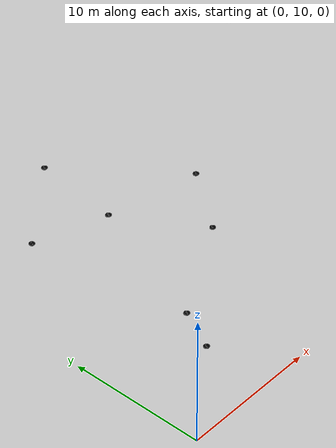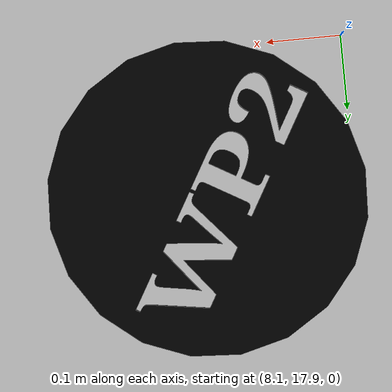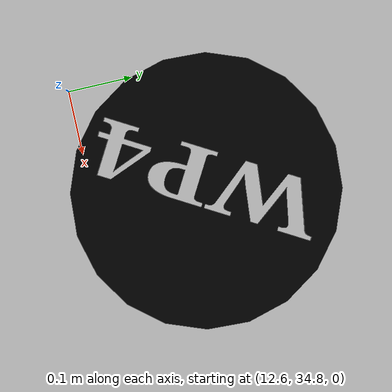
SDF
<sdf version="1.6">
 <world name="default">
  <light type="directional" name="sun">
   <cast_shadows>false</cast_shadows>
   <pose>50 0 50 0 0 0</pose>
   <diffuse>0.8 0.8 0.8 1</diffuse>
   <specular>0.2 0.2 0.2 1</specular>
   <attenuation>
    <range>1000</range>
    <constant>0.9</constant>
    <linear>0.01</linear>
    <quadratic>0.001</quadratic>
   </attenuation>
   <direction>-0.5 0.1 -0.9</direction>
  </light>
  <model name="ground_plane">
   <static>true</static>
   <link name="link">
    <collision name="collision">
     <geometry><plane><normal>0 0 1</normal><size>100 100</size></plane></geometry>
    </collision>
    <visual name="visual">
     <geometry><plane><normal>0 0 1</normal><size>100 100</size></plane></geometry>
     <material>
      <ambient>0.8 0.8 0.8 1</ambient>
      <diffuse>0.8 0.8 0.8 1</diffuse>
      <specular>0.8 0.8 0.8 1</specular>
      <specular>0.8 0.8 0.8 1</specular>
     </material>
    </visual>
   </link>
  </model>
  <physics name="1ms" type="ignored">
   <max_step_size>0.001</max_step_size>
   <real_time_factor>1.0</real_time_factor>
  </physics>
  <model name="wp1">
   <pose>7 15 -0.38 0 0 -2.094</pose>
   <static>true</static>
   <link name="link">
    <visual name="wp1_visual">
     <geometry><mesh><uri>model://dartec/meshes/wp1.stl</uri><scale>0.009 0.009 0.1</scale></mesh></geometry>
     <material>
      <ambient>0 0 0 1</ambient>
      <diffuse>0 0 0 1</diffuse>
      <specular>0.1 0.1 0.1 1</specular>
      <emissive>0 0 0 1</emissive>
     </material>
    </visual>
   </link>
  </model>
  <model name="wp2">
   <pose>8.5 18 -0.38 0 0 -2.094</pose>
   <static>true</static>
   <link name="link">
    <visual name="wp2_visual">
     <geometry><mesh><uri>model://dartec/meshes/wp2.stl</uri><scale>0.009 0.009 0.1</scale></mesh></geometry>
     <material>
      <ambient>0 0 0 1</ambient>
      <diffuse>0 0 0 1</diffuse>
      <specular>0.1 0.1 0.1 1</specular>
      <emissive>0 0 0 1</emissive>
     </material>
    </visual>
   </link>
  </model>
  <model name="wp3">
   <pose>6.7712 30.1505 -0.38 0 0 -2.094</pose>
   <static>true</static>
   <link name="link">
    <visual name="wp3_visual">
     <geometry><mesh><uri>model://dartec/meshes/wp3.stl</uri><scale>0.009 0.009 0.1</scale></mesh></geometry>
     <material>
      <ambient>0 0 0 1</ambient>
      <diffuse>0 0 0 1</diffuse>
      <specular>0.1 0.1 0.1 1</specular>
      <emissive>0 0 0 1</emissive>
     </material>
    </visual>
   </link>
  </model>
  <model name="wp4">
   <pose>13 34.8742 -0.38 0 0 -2.094</pose>
   <static>true</static>
   <link name="link">
    <visual name="wp4_visual">
     <geometry><mesh><uri>model://dartec/meshes/wp4.stl</uri><scale>0.009 0.009 0.1</scale></mesh></geometry>
     <material>
      <ambient>0 0 0 1</ambient>
      <diffuse>0 0 0 1</diffuse>
      <specular>0.1 0.1 0.1 1</specular>
      <emissive>0 0 0 1</emissive>
     </material>
    </visual>
   </link>
  </model>
  <model name="wp5">
   <pose>12.2715 28.2884 -0.38 0 0 -2.094</pose>
   <static>true</static>
   <link name="link">
    <visual name="wp4_visual">
     <geometry><mesh><uri>model://dartec/meshes/wp5.stl</uri><scale>0.009 0.009 0.1</scale></mesh></geometry>
     <material>
      <ambient>0 0 0 1</ambient>
      <diffuse>0 0 0 1</diffuse>
      <specular>0.1 0.1 0.1 1</specular>
      <emissive>0 0 0 1</emissive>
     </material>
    </visual>
   </link>
  </model>
  <model name="wp6">
   <pose>15.9535 22.2230 -0.38 0 0 -2.094</pose>
   <static>true</static>
   <link name="link">
    <visual name="wp4_visual">
     <geometry><mesh><uri>model://dartec/meshes/wp6.stl</uri><scale>0.009 0.009 0.1</scale></mesh></geometry>
     <material>
      <ambient>0 0 0 1</ambient>
      <diffuse>0 0 0 1</diffuse>
      <specular>0.1 0.1 0.1 1</specular>
      <emissive>0 0 0 1</emissive>
     </material>
    </visual>
   </link>
  </model>
  <model name="wp7">
   <pose>19.3913 26.6946 -0.38 0 0 -2.094</pose>
   <static>true</static>
   <link name="link">
    <visual name="wp4_visual">
     <geometry><mesh><uri>model://dartec/meshes/wp7.stl</uri><scale>0.009 0.009 0.1</scale></mesh></geometry>
     <material>
      <ambient>0 0 0 1</ambient>
      <diffuse>0 0 0 1</diffuse>
      <specular>0.1 0.1 0.1 1</specular>
      <emissive>0 0 0 1</emissive>
     </material>
    </visual>
   </link>
  </model>
  <model name="wp8">
   <pose>33.9855 36.2491 -0.38 0 0 -2.094</pose>
   <static>true</static>
   <link name="link">
    <visual name="wp4_visual">
     <geometry><mesh><uri>model://dartec/meshes/wp8.stl</uri><scale>0.009 0.009 0.1</scale></mesh></geometry>
     <material>
      <ambient>0 0 0 1</ambient>
      <diffuse>0 0 0 1</diffuse>
      <specular>0.1 0.1 0.1 1</specular>
      <emissive>0 0 0 1</emissive>
     </material>
    </visual>
   </link>
  </model>
 </world>
</sdf>
